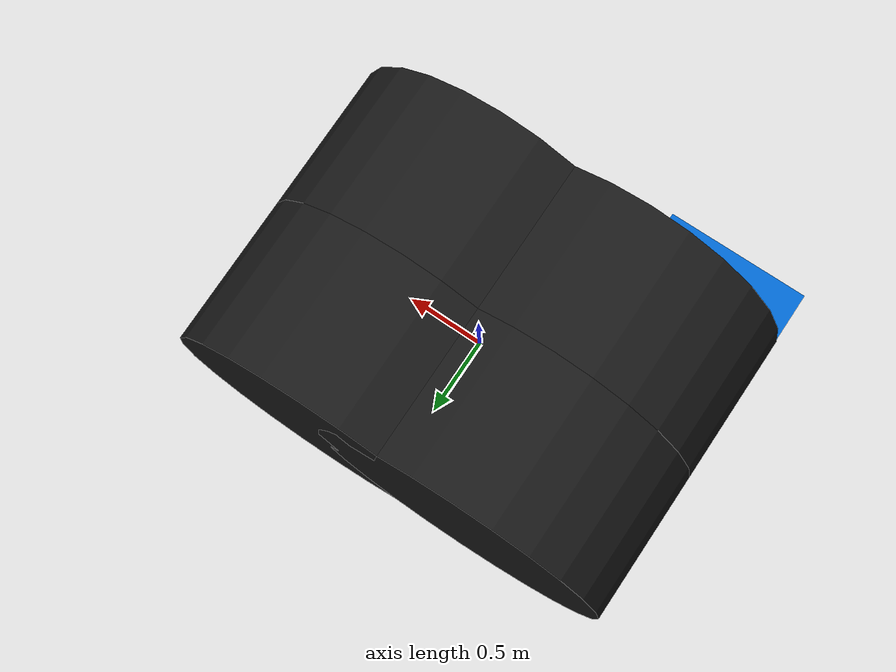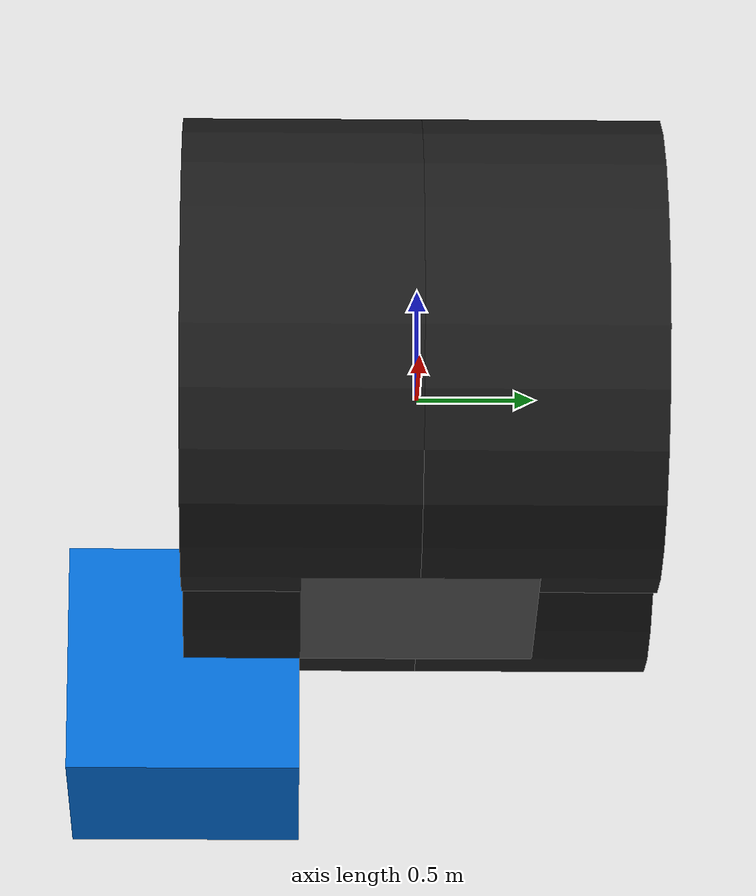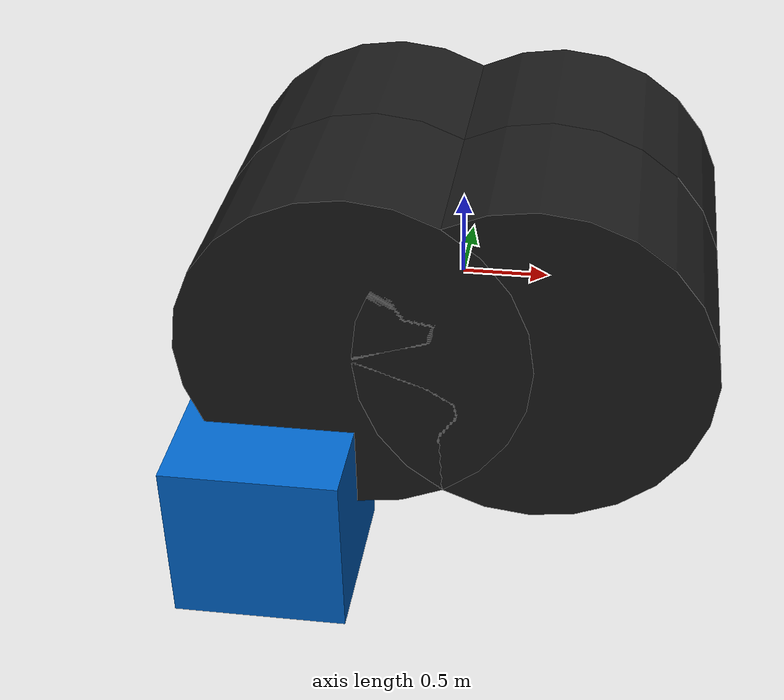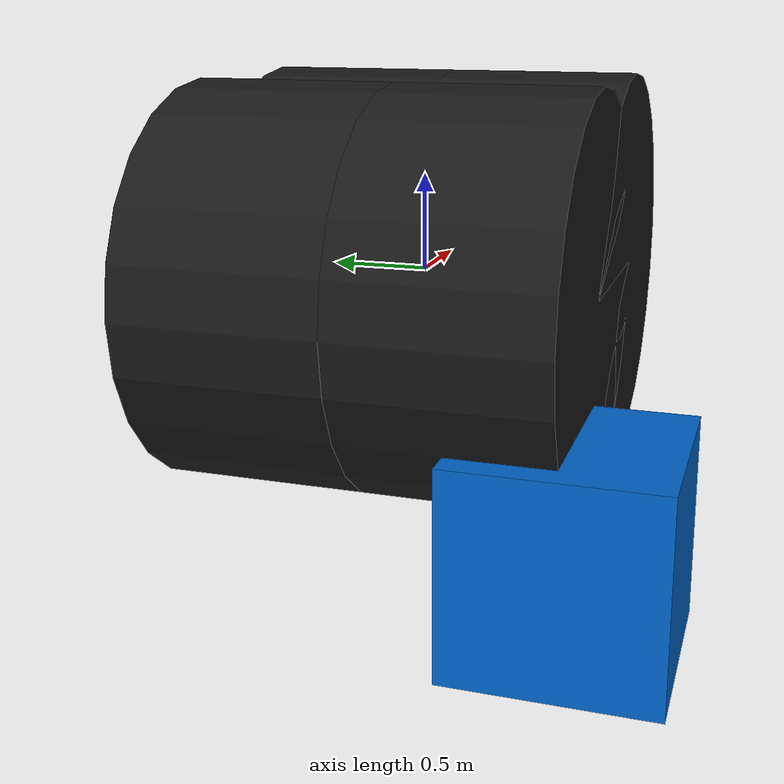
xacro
<?xml version="1.0"?>
<robot xmlns:xacro="http://www.ros.org/wiki/xacro" name="strafer">

  <!-- Args: injected from strafer_shared.constants by the launch file.   -->
  <!-- Sentinel defaults (-1) catch missing injection at a glance.        -->

  <!-- Wheel geometry -->
  <xacro:arg name="wheel_radius"  default="-1"/>
  <xacro:arg name="wheel_width"   default="-1"/>
  <xacro:arg name="wheel_base"    default="-1"/>
  <xacro:arg name="track_width"   default="-1"/>

  <!-- Chassis frame dimensions -->
  <xacro:arg name="chassis_length"           default="-1"/>
  <xacro:arg name="chassis_width"            default="-1"/>
  <xacro:arg name="chassis_height"           default="-1"/>
  <xacro:arg name="chassis_ground_clearance" default="-1"/>

  <!-- Camera mount offsets from base_link -->
  <xacro:arg name="camera_x" default="-1"/>
  <xacro:arg name="camera_y" default="-1"/>
  <xacro:arg name="camera_z" default="-1"/>

  <!-- Mass budget -->
  <xacro:arg name="mass_wheel_assembly" default="-1"/>
  <xacro:arg name="mass_chassis"        default="-1"/>
  <xacro:arg name="mass_camera"         default="-1"/>

  <!-- Camera box dimensions for inertia -->
  <xacro:arg name="camera_length" default="-1"/>
  <xacro:arg name="camera_width"  default="-1"/>
  <xacro:arg name="camera_height" default="-1"/>

  <!-- Resolve args into xacro properties for use in expressions -->
  <xacro:property name="wheel_radius"        value="$(arg wheel_radius)"/>
  <xacro:property name="wheel_width"         value="$(arg wheel_width)"/>
  <xacro:property name="wheel_base"          value="$(arg wheel_base)"/>
  <xacro:property name="track_width"         value="$(arg track_width)"/>
  <xacro:property name="chassis_length"      value="$(arg chassis_length)"/>
  <xacro:property name="chassis_width"       value="$(arg chassis_width)"/>
  <xacro:property name="chassis_height"      value="$(arg chassis_height)"/>
  <xacro:property name="chassis_ground_clearance" value="$(arg chassis_ground_clearance)"/>
  <xacro:property name="camera_x"            value="$(arg camera_x)"/>
  <xacro:property name="camera_y"            value="$(arg camera_y)"/>
  <xacro:property name="camera_z"            value="$(arg camera_z)"/>
  <xacro:property name="mass_wheel_assembly" value="$(arg mass_wheel_assembly)"/>
  <xacro:property name="mass_chassis"        value="$(arg mass_chassis)"/>
  <xacro:property name="mass_camera"         value="$(arg mass_camera)"/>
  <xacro:property name="camera_length"       value="$(arg camera_length)"/>
  <xacro:property name="camera_width"        value="$(arg camera_width)"/>
  <xacro:property name="camera_height"       value="$(arg camera_height)"/>

  <!-- Materials                                                          -->

  <material name="dark_grey">
    <color rgba="0.3 0.3 0.3 1.0"/>
  </material>

  <material name="black">
    <color rgba="0.1 0.1 0.1 1.0"/>
  </material>

  <material name="blue">
    <color rgba="0.0 0.4 0.8 1.0"/>
  </material>

  <!-- Base link: origin at chassis center, wheel-axle height             -->

  <link name="base_link"/>

  <!-- Chassis visual/collision -->
  <link name="chassis_link">
    <visual>
      <geometry>
        <box size="${chassis_length} ${chassis_width} ${chassis_height}"/>
      </geometry>
      <material name="dark_grey"/>
    </visual>
    <collision>
      <geometry>
        <box size="${chassis_length} ${chassis_width} ${chassis_height}"/>
      </geometry>
    </collision>
    <inertial>
      <!-- MASS_CHASSIS from constants.py (frame + roboclaws + misc electronics) -->
      <mass value="${mass_chassis}"/>
      <!-- Box inertia: Ixx=m/12*(w²+h²), Iyy=m/12*(l²+h²), Izz=m/12*(l²+w²) -->
      <inertia ixx="${mass_chassis/12*(chassis_width**2 + chassis_height**2)}"
               ixy="0.0" ixz="0.0"
               iyy="${mass_chassis/12*(chassis_length**2 + chassis_height**2)}"
               iyz="0.0"
               izz="${mass_chassis/12*(chassis_length**2 + chassis_width**2)}"/>
    </inertial>
  </link>

  <joint name="chassis_joint" type="fixed">
    <parent link="base_link"/>
    <child link="chassis_link"/>
    <origin xyz="0 0 ${chassis_ground_clearance - wheel_radius + chassis_height/2}" rpy="0 0 0"/>
  </joint>

  <!-- Wheel macro                                                        -->

  <xacro:macro name="wheel" params="name x_sign y_sign">
    <link name="${name}_link">
      <visual>
        <!-- Cylinder axis is Z by default; rotate 90° around X to align with Y -->
        <origin xyz="0 0 0" rpy="${pi/2} 0 0"/>
        <geometry>
          <cylinder radius="${wheel_radius}" length="${wheel_width}"/>
        </geometry>
        <material name="black"/>
      </visual>
      <collision>
        <origin xyz="0 0 0" rpy="${pi/2} 0 0"/>
        <geometry>
          <cylinder radius="${wheel_radius}" length="${wheel_width}"/>
        </geometry>
      </collision>
      <inertial>
        <!-- MASS_WHEEL_ASSEMBLY: motor + mecanum wheel per corner -->
        <mass value="${mass_wheel_assembly}"/>
        <!-- Cylinder inertia (axis along Y after visual rotation):
             Ixx=Izz=m/12*(3r²+L²), Iyy=mr²/2 -->
        <inertia ixx="${mass_wheel_assembly/12*(3*wheel_radius**2 + wheel_width**2)}"
                 ixy="0.0" ixz="0.0"
                 iyy="${mass_wheel_assembly * wheel_radius**2 / 2}"
                 iyz="0.0"
                 izz="${mass_wheel_assembly/12*(3*wheel_radius**2 + wheel_width**2)}"/>
      </inertial>
    </link>
  </xacro:macro>

  <!-- Wheel instances: FL=1, FR=2, RL=3, RR=4                           -->
  <!-- Positions: ±wheel_base/2 (X), ±track_width/2 (Y), 0 (Z)          -->

  <!-- Front Left (wheel_1) -->
  <xacro:wheel name="wheel_1" x_sign="1" y_sign="1"/>
  <joint name="wheel_1_drive" type="continuous">
    <parent link="base_link"/>
    <child link="wheel_1_link"/>
    <origin xyz="${wheel_base/2} ${track_width/2} 0" rpy="0 0 0"/>
    <axis xyz="0 1 0"/>
  </joint>

  <!-- Front Right (wheel_2) -->
  <xacro:wheel name="wheel_2" x_sign="1" y_sign="-1"/>
  <joint name="wheel_2_drive" type="continuous">
    <parent link="base_link"/>
    <child link="wheel_2_link"/>
    <origin xyz="${wheel_base/2} ${-track_width/2} 0" rpy="0 0 0"/>
    <axis xyz="0 1 0"/>
  </joint>

  <!-- Rear Left (wheel_3) -->
  <xacro:wheel name="wheel_3" x_sign="-1" y_sign="1"/>
  <joint name="wheel_3_drive" type="continuous">
    <parent link="base_link"/>
    <child link="wheel_3_link"/>
    <origin xyz="${-wheel_base/2} ${track_width/2} 0" rpy="0 0 0"/>
    <axis xyz="0 1 0"/>
  </joint>

  <!-- Rear Right (wheel_4) -->
  <xacro:wheel name="wheel_4" x_sign="-1" y_sign="-1"/>
  <joint name="wheel_4_drive" type="continuous">
    <parent link="base_link"/>
    <child link="wheel_4_link"/>
    <origin xyz="${-wheel_base/2} ${-track_width/2} 0" rpy="0 0 0"/>
    <axis xyz="0 1 0"/>
  </joint>

  <!-- Camera mount: Intel RealSense D555                                 -->
  <!-- Offsets from CAMERA_OFFSET_X/Y/Z in constants.py                   -->
  <!-- NOTE: perception.launch.py also publishes this as a static TF.     -->
  <!-- When both are launched, remove the static TF from perception.      -->

  <link name="d555_link">
    <!-- Small box representing the camera -->
    <visual>
      <geometry>
        <box size="${camera_length} ${camera_width} ${camera_height}"/>
      </geometry>
      <material name="blue"/>
    </visual>
    <collision>
      <geometry>
        <box size="${camera_length} ${camera_width} ${camera_height}"/>
      </geometry>
    </collision>
    <inertial>
      <!-- MASS_CAMERA from constants.py -->
      <mass value="${mass_camera}"/>
      <!-- Box inertia for camera housing -->
      <inertia ixx="${mass_camera/12*(camera_width**2 + camera_height**2)}"
               ixy="0.0" ixz="0.0"
               iyy="${mass_camera/12*(camera_length**2 + camera_height**2)}"
               iyz="0.0"
               izz="${mass_camera/12*(camera_length**2 + camera_width**2)}"/>
    </inertial>
  </link>

  <joint name="d555_mount" type="fixed">
    <parent link="base_link"/>
    <child link="d555_link"/>
    <origin xyz="${camera_x} ${camera_y} ${camera_z}" rpy="0 0 0"/>
  </joint>

  <link name="d555_color_optical_frame"/>

  <joint name="d555_color_optical_joint" type="fixed">
    <parent link="d555_link"/>
    <child link="d555_color_optical_frame"/>
    <origin xyz="0 0 0" rpy="${-pi/2} 0 ${-pi/2}"/>
  </joint>

</robot>
